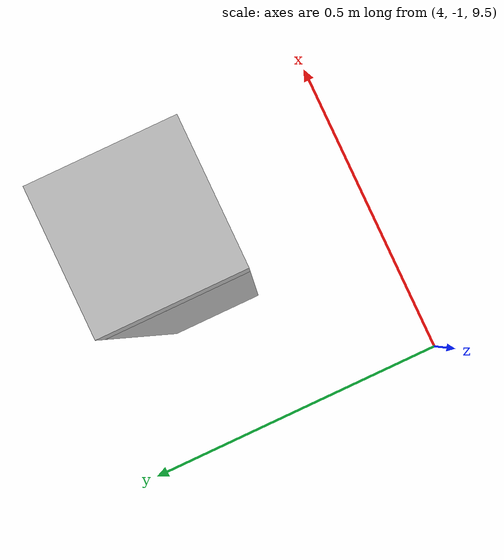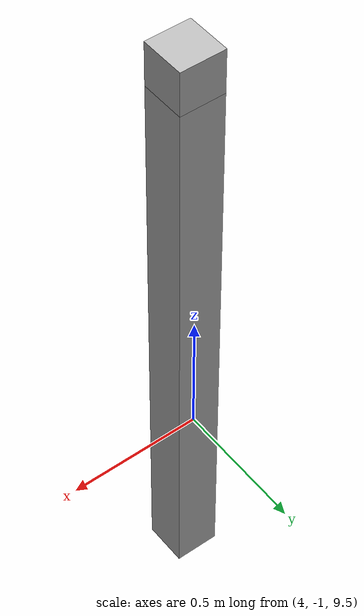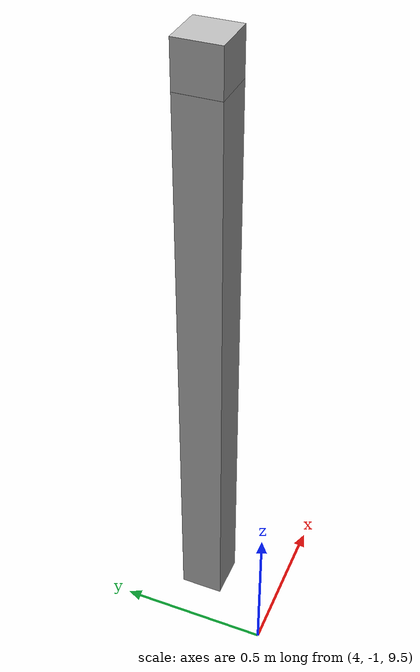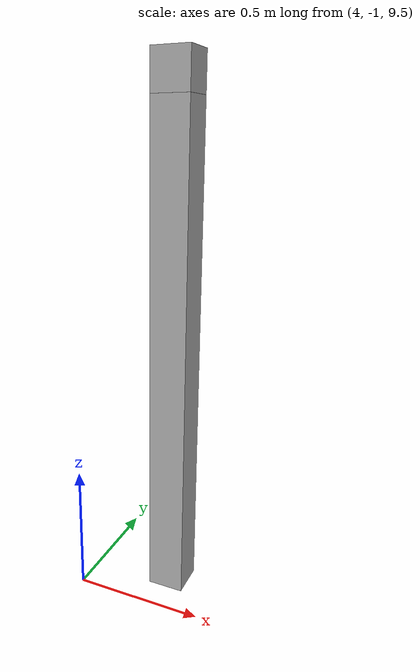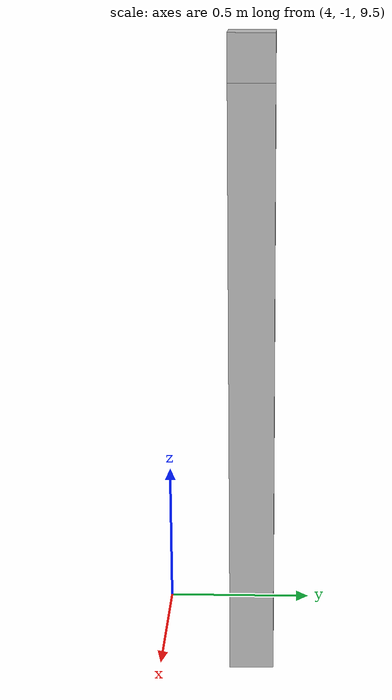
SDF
<sdf version="1.7">
 <world name="default">
  <model name="orthogonal_747_2.000.15_TS">
   <static>1</static>
   <link name="u_link_6_2_5">
    <inertial>
     <mass>1</mass>
     <inertia>
      <ixx>0.166667</ixx>
      <ixy>0</ixy>
      <ixz>0</ixz>
      <iyy>0.166667</iyy>
      <iyz>0</iyz>
      <izz>0.166667</izz>
     </inertia>
    </inertial>
    <pose>10.75 4.3 13.975 0 -0 0</pose>
    <visual name="visual_0">
     <laser_retro>5853</laser_retro>
     <geometry><box><size>0.15 1e-06 0.15</size></box></geometry>
     <material>
      <script><name>Gazebo/Grey</name><uri>file://media/materials/scripts/gazebo.material</uri></script>
      <shader type="pixel"><normal_map>__default__</normal_map></shader>
      <ambient>0.678 0.498 0.659 1</ambient>
      <diffuse>0.7 0.7 0.7 1</diffuse>
      <specular>0.01 0.01 0.01 1</specular>
      <emissive>0 0 0 1</emissive>
     </material>
     <pose>0 -0.075 0 0 -0 0</pose>
     <transparency>1</transparency>
    </visual>
    <visual name="visual_1">
     <laser_retro>5854</laser_retro>
     <geometry><box><size>0.15 1e-06 0.15</size></box></geometry>
     <material>
      <script><name>Gazebo/Grey</name><uri>file://media/materials/scripts/gazebo.material</uri></script>
      <shader type="pixel"><normal_map>__default__</normal_map></shader>
      <ambient>0.447 0.624 0.812 1</ambient>
      <diffuse>0.7 0.7 0.7 1</diffuse>
      <specular>0.01 0.01 0.01 1</specular>
      <emissive>0 0 0 1</emissive>
     </material>
     <pose>0 0.075 0 0 -0 0</pose>
     <transparency>1</transparency>
    </visual>
    <visual name="visual_2">
     <laser_retro>5855</laser_retro>
     <geometry><box><size>0.15 0.15 1e-06</size></box></geometry>
     <material>
      <script><name>Gazebo/Grey</name><uri>file://media/materials/scripts/gazebo.material</uri></script>
      <shader type="pixel"><normal_map>__default__</normal_map></shader>
      <ambient>0.988 0.686 0.243 1</ambient>
      <diffuse>0.7 0.7 0.7 1</diffuse>
      <specular>0.01 0.01 0.01 1</specular>
      <emissive>0 0 0 1</emissive>
     </material>
     <pose>0 0 -0.075 0 -0 0</pose>
     <transparency>1</transparency>
    </visual>
    <visual name="visual_3">
     <laser_retro>5856</laser_retro>
     <geometry><box><size>1e-06 0.15 0.15</size></box></geometry>
     <material>
      <script><name>Gazebo/Grey</name><uri>file://media/materials/scripts/gazebo.material</uri></script>
      <shader type="pixel"><normal_map>__default__</normal_map></shader>
      <ambient>0.988 0.914 0.31 1</ambient>
      <diffuse>0.7 0.7 0.7 1</diffuse>
      <specular>0.01 0.01 0.01 1</specular>
      <emissive>0 0 0 1</emissive>
     </material>
     <pose>0.075 0 0 0 -0 0</pose>
     <transparency>1</transparency>
    </visual>
    <visual name="visual_4">
     <laser_retro>5857</laser_retro>
     <geometry><box><size>0.15 0.15 1e-06</size></box></geometry>
     <material>
      <script><name>Gazebo/Grey</name><uri>file://media/materials/scripts/gazebo.material</uri></script>
      <shader type="pixel"><normal_map>__default__</normal_map></shader>
      <ambient>0.937 0.161 0.161 1</ambient>
      <diffuse>0.7 0.7 0.7 1</diffuse>
      <specular>0.01 0.01 0.01 1</specular>
      <emissive>0 0 0 1</emissive>
     </material>
     <pose>0 0 0.075 0 -0 0</pose>
     <transparency>1</transparency>
    </visual>
    <visual name="visual_5">
     <laser_retro>5858</laser_retro>
     <geometry><box><size>1e-06 0.15 0.15</size></box></geometry>
     <material>
      <script><name>Gazebo/Grey</name><uri>file://media/materials/scripts/gazebo.material</uri></script>
      <shader type="pixel"><normal_map>__default__</normal_map></shader>
      <ambient>0.541 0.886 0.204 1</ambient>
      <diffuse>0.7 0.7 0.7 1</diffuse>
      <specular>0.01 0.01 0.01 1</specular>
      <emissive>0 0 0 1</emissive>
     </material>
     <pose>-0.075 0 0 0 -0 0</pose>
     <transparency>1</transparency>
    </visual>
    <visual name="visual_texture">
     <geometry><box><size>0.149985 0.149985 0.149985</size></box></geometry>
     <material>
      <script>
       <uri>model://BASE_MODELS/simple_block_v2_textured/materials/scripts</uri>
       <uri>model://BASE_MODELS/simple_block_v2_textured/materials/textures</uri>
       <name>metal</name>
      </script>
     </material>
     <laser_retro>5859</laser_retro>
    </visual>
    <collision name="collision">
     <geometry><box><size>0.15 0.15 0.15</size></box></geometry>
     <surface>
      <friction>
       <ode><mu>1</mu><mu2>1</mu2><fdir1>0 0 0</fdir1><slip1>0</slip1><slip2>0</slip2></ode>
       <torsional>
        <coefficient>1</coefficient>
        <patch_radius>0</patch_radius>
        <surface_radius>0</surface_radius>
        <use_patch_radius>1</use_patch_radius>
        <ode><slip>0</slip></ode>
       </torsional>
      </friction>
      <bounce><restitution_coefficient>0</restitution_coefficient><threshold>1e+06</threshold></bounce>
      <contact>
       <collide_without_contact>0</collide_without_contact>
       <collide_without_contact_bitmask>1</collide_without_contact_bitmask>
       <collide_bitmask>1</collide_bitmask>
       <ode>
        <soft_cfm>0</soft_cfm>
        <soft_erp>0.2</soft_erp>
        <kp>1e+13</kp>
        <kd>1</kd>
        <max_vel>0.01</max_vel>
        <min_depth>0</min_depth>
       </ode>
       <bullet>
        <split_impulse>1</split_impulse>
        <split_impulse_penetration_threshold>-0.01</split_impulse_penetration_threshold>
        <soft_cfm>0</soft_cfm>
        <soft_erp>0.2</soft_erp>
        <kp>1e+13</kp>
        <kd>1</kd>
       </bullet>
      </contact>
     </surface>
    </collision>
   </link>
   <link name="z_link_6_2_5">
    <inertial>
     <mass>1</mass>
     <inertia>
      <ixx>0.166667</ixx>
      <ixy>0</ixy>
      <ixz>0</ixz>
      <iyy>0.166667</iyy>
      <iyz>0</iyz>
      <izz>0.166667</izz>
     </inertia>
    </inertial>
    <pose>10.75 4.3 12.9 0 -0 0</pose>
    <visual name="visual_0">
     <laser_retro>5860</laser_retro>
     <geometry><box><size>0.15 1e-06 2</size></box></geometry>
     <material>
      <script><name>Gazebo/Grey</name><uri>file://media/materials/scripts/gazebo.material</uri></script>
      <shader type="pixel"><normal_map>__default__</normal_map></shader>
      <ambient>0.678 0.498 0.659 1</ambient>
      <diffuse>0.7 0.7 0.7 1</diffuse>
      <specular>0.01 0.01 0.01 1</specular>
      <emissive>0 0 0 1</emissive>
     </material>
     <pose>0 -0.075 0 0 -0 0</pose>
     <transparency>1</transparency>
    </visual>
    <visual name="visual_1">
     <laser_retro>5861</laser_retro>
     <geometry><box><size>0.15 1e-06 2</size></box></geometry>
     <material>
      <script><name>Gazebo/Grey</name><uri>file://media/materials/scripts/gazebo.material</uri></script>
      <shader type="pixel"><normal_map>__default__</normal_map></shader>
      <ambient>0.447 0.624 0.812 1</ambient>
      <diffuse>0.7 0.7 0.7 1</diffuse>
      <specular>0.01 0.01 0.01 1</specular>
      <emissive>0 0 0 1</emissive>
     </material>
     <pose>0 0.075 0 0 -0 0</pose>
     <transparency>1</transparency>
    </visual>
    <visual name="visual_2">
     <laser_retro>5862</laser_retro>
     <geometry><box><size>0.15 0.15 1e-06</size></box></geometry>
     <material>
      <script><name>Gazebo/Grey</name><uri>file://media/materials/scripts/gazebo.material</uri></script>
      <shader type="pixel"><normal_map>__default__</normal_map></shader>
      <ambient>0.988 0.686 0.243 1</ambient>
      <diffuse>0.7 0.7 0.7 1</diffuse>
      <specular>0.01 0.01 0.01 1</specular>
      <emissive>0 0 0 1</emissive>
     </material>
     <pose>0 0 -1 0 -0 0</pose>
     <transparency>1</transparency>
    </visual>
    <visual name="visual_3">
     <laser_retro>5863</laser_retro>
     <geometry><box><size>1e-06 0.15 2</size></box></geometry>
     <material>
      <script><name>Gazebo/Grey</name><uri>file://media/materials/scripts/gazebo.material</uri></script>
      <shader type="pixel"><normal_map>__default__</normal_map></shader>
      <ambient>0.988 0.914 0.31 1</ambient>
      <diffuse>0.7 0.7 0.7 1</diffuse>
      <specular>0.01 0.01 0.01 1</specular>
      <emissive>0 0 0 1</emissive>
     </material>
     <pose>0.075 0 0 0 -0 0</pose>
     <transparency>1</transparency>
    </visual>
    <visual name="visual_4">
     <laser_retro>5864</laser_retro>
     <geometry><box><size>0.15 0.15 1e-06</size></box></geometry>
     <material>
      <script><name>Gazebo/Grey</name><uri>file://media/materials/scripts/gazebo.material</uri></script>
      <shader type="pixel"><normal_map>__default__</normal_map></shader>
      <ambient>0.937 0.161 0.161 1</ambient>
      <diffuse>0.7 0.7 0.7 1</diffuse>
      <specular>0.01 0.01 0.01 1</specular>
      <emissive>0 0 0 1</emissive>
     </material>
     <pose>0 0 1 0 -0 0</pose>
     <transparency>1</transparency>
    </visual>
    <visual name="visual_5">
     <laser_retro>5865</laser_retro>
     <geometry><box><size>1e-06 0.15 2</size></box></geometry>
     <material>
      <script><name>Gazebo/Grey</name><uri>file://media/materials/scripts/gazebo.material</uri></script>
      <shader type="pixel"><normal_map>__default__</normal_map></shader>
      <ambient>0.541 0.886 0.204 1</ambient>
      <diffuse>0.7 0.7 0.7 1</diffuse>
      <specular>0.01 0.01 0.01 1</specular>
      <emissive>0 0 0 1</emissive>
     </material>
     <pose>-0.075 0 0 0 -0 0</pose>
     <transparency>1</transparency>
    </visual>
    <visual name="visual_texture">
     <geometry><box><size>0.149985 0.149985 1.9998</size></box></geometry>
     <material>
      <script>
       <uri>model://BASE_MODELS/simple_block_v2_textured/materials/scripts</uri>
       <uri>model://BASE_MODELS/simple_block_v2_textured/materials/textures</uri>
       <name>metal</name>
      </script>
     </material>
     <laser_retro>5866</laser_retro>
    </visual>
    <collision name="collision">
     <geometry><box><size>0.15 0.15 2</size></box></geometry>
     <surface>
      <friction>
       <ode><mu>1</mu><mu2>1</mu2><fdir1>0 0 0</fdir1><slip1>0</slip1><slip2>0</slip2></ode>
       <torsional>
        <coefficient>1</coefficient>
        <patch_radius>0</patch_radius>
        <surface_radius>0</surface_radius>
        <use_patch_radius>1</use_patch_radius>
        <ode><slip>0</slip></ode>
       </torsional>
      </friction>
      <bounce><restitution_coefficient>0</restitution_coefficient><threshold>1e+06</threshold></bounce>
      <contact>
       <collide_without_contact>0</collide_without_contact>
       <collide_without_contact_bitmask>1</collide_without_contact_bitmask>
       <collide_bitmask>1</collide_bitmask>
       <ode>
        <soft_cfm>0</soft_cfm>
        <soft_erp>0.2</soft_erp>
        <kp>1e+13</kp>
        <kd>1</kd>
        <max_vel>0.01</max_vel>
        <min_depth>0</min_depth>
       </ode>
       <bullet>
        <split_impulse>1</split_impulse>
        <split_impulse_penetration_threshold>-0.01</split_impulse_penetration_threshold>
        <soft_cfm>0</soft_cfm>
        <soft_erp>0.2</soft_erp>
        <kp>1e+13</kp>
        <kd>1</kd>
       </bullet>
      </contact>
     </surface>
    </collision>
   </link>
   <pose>-6.47624 -5 -2.5 0 -0 0</pose>
  </model>
 </world>
</sdf>
